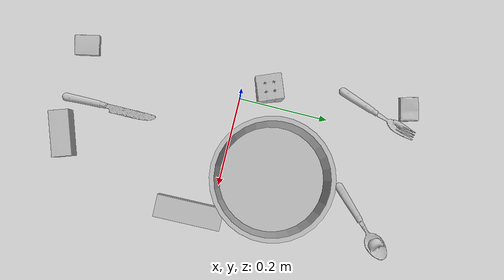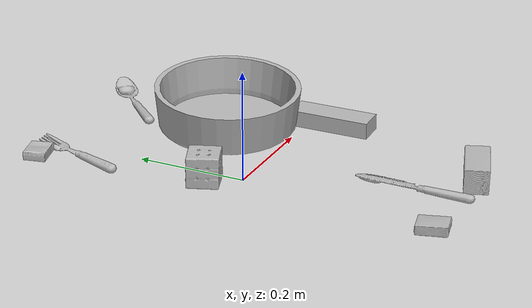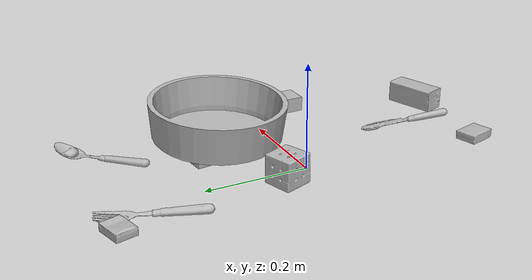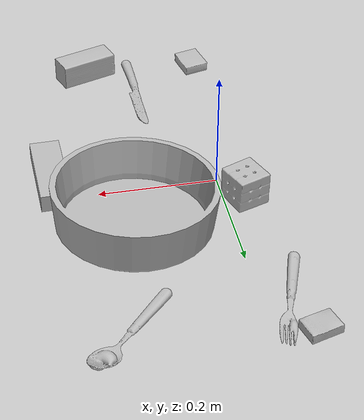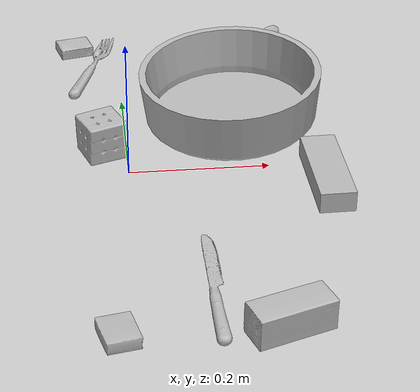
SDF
<sdf version="1.4">
  <world name="default">
    <light name="light1" type="point">
      <pose>0 0 1 0 0 0</pose>
      <diffuse>3 3 3 1</diffuse>
      <specular>3 3 3 1</specular>
    </light>
    <light name="light2" type="point">
      <pose>0 0.5 2 0 0 0</pose>
      <diffuse>1 1 1 1</diffuse>
      <specular>1 1 1 1</specular>
    </light>
    <light name="light3" type="point">
      <pose>0 0.5 2 0 0 0</pose>
      <diffuse>3 3 3 1</diffuse>
      <specular>3 3 3 1</specular>
    </light>
    <scene>
      <ambient>0.7 0.7 0.7</ambient>
    </scene>
    <model name="box11">
      <link name="link_box11">
        <collision name="default">
          <geometry>
            <mesh>
              <uri>model://cracker_box/collision_meshes/collision.obj</uri>
              <scale>0.25 0.25 0.25</scale>
            </mesh>
          </geometry>
          <surface>
            <friction>
              <ode>
                <mu>0.5</mu>
                <mu2>0.5</mu2>
              </ode>
            </friction>
          <contact>
        <ode>
            <max_vel>0</max_vel>
            <min_depth>0.0001</min_depth>
            <kp>1e8</kp>
        </ode>
    </contact></surface>
        </collision>
        <visual name="default">
          <geometry>
            <mesh>
              <uri>model://cracker_box/visual_meshes/visual.dae</uri>
              <scale>0.25 0.25 0.25</scale>
            </mesh>
          </geometry>
        </visual>
        <inertial>
          <mass>0.04448898881673813</mass>
          <pose>0.00023660270380787551 6.358561950037256e-05 -0.000425738311605528 -0.00031620780372907927 -0.011106488668730609 0.002546795468482302</pose>
          <inertia>
            <ixx>7.0725087e-06</ixx>
            <iyy>1.1678099e-05</iyy>
            <izz>1.666572e-05</izz>
            <ixy>0</ixy>
            <ixz>0</ixz>
            <iyz>0</iyz>
          </inertia>
        </inertial>
      </link>
      <pose>-0.06831073015928268 0.37137094140052795 0.009096038527786732 -0.014050460387982843 -0.0050142198044985375 -2.882812270447369</pose>
    </model>
    <model name="box12">
      <link name="link_box12">
        <collision name="default">
          <geometry>
            <mesh>
              <uri>model://wood_block/collision_meshes/collision.obj</uri>
              <scale>0.5 0.5 0.5</scale>
            </mesh>
          </geometry>
          <surface>
            <friction>
              <ode>
                <mu>0.5</mu>
                <mu2>0.5</mu2>
              </ode>
            </friction>
          <contact>
        <ode>
            <max_vel>0</max_vel>
            <min_depth>0.0001</min_depth>
            <kp>1e8</kp>
        </ode>
    </contact></surface>
        </collision>
        <visual name="default">
          <geometry>
            <mesh>
              <uri>model://wood_block/visual_meshes/visual.dae</uri>
              <scale>0.5 0.5 0.5</scale>
            </mesh>
          </geometry>
        </visual>
        <inertial>
          <mass>0.30308207869529724</mass>
          <pose>-2.906657982748584e-06 -0.000285404734313488 0.00013204291462898254 -0.05220975528484064 -0.0051926956083073895 -0.006861380255216688</pose>
          <inertia>
            <ixx>0.00010139242</ixx>
            <iyy>0.00032029866</iyy>
            <izz>0.0003191006</izz>
            <ixy>0</ixy>
            <ixz>0</ixz>
            <iyz>0</iyz>
          </inertia>
        </inertial>
      </link>
      <pose>0.17159470915794373 -0.36243271827697754 0.02262926660478115 -0.005208390104960029 0.0057187520811436765 -2.8091174088226905</pose>
    </model>
    <model name="box13">
      <link name="link_box13">
        <collision name="default">
          <geometry>
            <mesh>
              <uri>model://pudding_box/collision_meshes/collision.obj</uri>
              <scale>0.5 0.5 0.5</scale>
            </mesh>
          </geometry>
          <surface>
            <friction>
              <ode>
                <mu>0.5</mu>
                <mu2>0.5</mu2>
              </ode>
            </friction>
          <contact>
        <ode>
            <max_vel>0</max_vel>
            <min_depth>0.0001</min_depth>
            <kp>1e8</kp>
        </ode>
    </contact></surface>
        </collision>
        <visual name="default">
          <geometry>
            <mesh>
              <uri>model://pudding_box/visual_meshes/visual.dae</uri>
              <scale>0.5 0.5 0.5</scale>
            </mesh>
          </geometry>
        </visual>
        <inertial>
          <mass>0.06630203872919083</mass>
          <pose>0.00024474109522998333 0.00040339428232982755 -0.00025944141088984907 0.0052131027026664865 -0.006603797821229493 0.02007983447369903</pose>
          <inertia>
            <ixx>1.873776e-05</ixx>
            <iyy>1.2606899e-05</iyy>
            <izz>2.7671198e-05</izz>
            <ixy>0</ixy>
            <ixz>0</ixz>
            <iyz>0</iyz>
          </inertia>
        </inertial>
      </link>
      <pose>-0.0319686084985733 -0.35927873849868774 0.009862903505563736 0.022348610724161704 -0.011391691291276934 -2.9211605834970142</pose>
    </model>
    <model name="box21">
      <link name="link_box21">
        <collision name="default">
          <geometry>
            <mesh>
              <uri>model://sugar_box/collision_meshes/collision.obj</uri>
              <scale>0.5 0.5 0.5</scale>
            </mesh>
          </geometry>
          <surface>
            <friction>
              <ode>
                <mu>0.5</mu>
                <mu2>0.5</mu2>
              </ode>
            </friction>
          <contact>
        <ode>
            <max_vel>0</max_vel>
            <min_depth>0.0001</min_depth>
            <kp>1e8</kp>
        </ode>
    </contact></surface>
        </collision>
        <visual name="default">
          <geometry>
            <mesh>
              <uri>model://sugar_box/visual_meshes/visual.dae</uri>
              <scale>0.5 0.5 0.5</scale>
            </mesh>
          </geometry>
        </visual>
        <inertial>
          <mass>0.09398066252470016</mass>
          <pose>0.0005171863595023751 1.924554817378521e-05 -0.00018182402709499002 -0.00040462650409139634 0.0010506636387973133 0.002615378555960767</pose>
          <inertia>
            <ixx>1.9576108e-05</ixx>
            <iyy>6.3274e-05</iyy>
            <izz>7.574653e-05</izz>
            <ixy>0</ixy>
            <ixz>0</ixz>
            <iyz>0</iyz>
          </inertia>
        </inertial>
      </link>
      <pose>0.12902326881885529 0.1633201390504837 0.011480910703539848 0.019911599312881046 -0.022808986133856488 0.14890099865226109</pose>
    </model>
    <model name="box22">
      <link name="link_box22">
        <collision name="default">
          <geometry>
            <mesh>
              <uri>model://jenga/collision_meshes/collision.obj</uri>
              <scale>1.0 1.0 1.0</scale>
            </mesh>
          </geometry>
          <surface>
            <friction>
              <ode>
                <mu>0.5</mu>
                <mu2>0.5</mu2>
              </ode>
            </friction>
          <contact>
        <ode>
            <max_vel>0</max_vel>
            <min_depth>0.0001</min_depth>
            <kp>1e8</kp>
        </ode>
    </contact></surface>
        </collision>
        <visual name="default">
          <geometry>
            <mesh>
              <uri>model://jenga/visual_meshes/visual.dae</uri>
              <scale>1.0 1.0 1.0</scale>
            </mesh>
          </geometry>
        </visual>
        <inertial>
          <mass>0.2620435655117035</mass>
          <pose>-2.5028555228345795e-07 -0.0001025000965455547 -4.092339804628864e-05 0.0 -7.342154049184251e-07 0.0</pose>
          <inertia>
            <ixx>7.251381e-05</ixx>
            <iyy>0.0004913516</iyy>
            <izz>0.00052455964</izz>
            <ixy>0</ixy>
            <ixz>0</ixz>
            <iyz>0</iyz>
          </inertia>
        </inertial>
      </link>
      <pose>0.2733553349971771 -0.04946187883615494 0.01499988790601492 -2.121404146913309e-05 1.808599665233557e-05 -1.5500342515869754</pose>
    </model>
    <model name="box23">
      <link name="link_box23">
        <collision name="default">
          <geometry>
            <mesh>
              <uri>model://rubiks_cube/collision_meshes/collision.obj</uri>
              <scale>1.0 1.0 1.0</scale>
            </mesh>
          </geometry>
          <surface>
            <friction>
              <ode>
                <mu>0.5</mu>
                <mu2>0.5</mu2>
              </ode>
            </friction>
          <contact>
        <ode>
            <max_vel>0</max_vel>
            <min_depth>0.0001</min_depth>
            <kp>1e8</kp>
        </ode>
    </contact></surface>
        </collision>
        <visual name="default">
          <geometry>
            <mesh>
              <uri>model://rubiks_cube/visual_meshes/visual.dae</uri>
              <scale>1.0 1.0 1.0</scale>
            </mesh>
          </geometry>
        </visual>
        <inertial>
          <mass>0.1897622048854828</mass>
          <pose>2.6721043468569405e-05 5.256967051536776e-05 -7.264316082000732e-06 -0.054673156626660294 -0.09814014504853939 -0.034453657529750985</pose>
          <inertia>
            <ixx>0.00010485636</ixx>
            <iyy>0.00010436737</iyy>
            <izz>0.000105725274</izz>
            <ixy>0</ixy>
            <ixz>0</ixz>
            <iyz>0</iyz>
          </inertia>
        </inertial>
      </link>
      <pose>-0.03477120399475098 0.056736256927251816 0.028678953647613525 -4.2782574394579395e-06 -1.184939257591765e-06 -1.1971256186466932</pose>
    </model>
    <model name="plate1">
      <link name="link_plate1">
        <collision name="default">
          <geometry>
            <mesh>
              <uri>model://pan_tefal/collision_meshes/collision.obj</uri>
              <scale>1.0 1.0 1.0</scale>
            </mesh>
          </geometry>
          <surface>
            <friction>
              <ode>
                <mu>0.5</mu>
                <mu2>0.5</mu2>
              </ode>
            </friction>
          <contact>
        <ode>
            <max_vel>0</max_vel>
            <min_depth>0.0001</min_depth>
            <kp>1e8</kp>
        </ode>
    </contact></surface>
        </collision>
        <visual name="default">
          <geometry>
            <mesh>
              <uri>model://pan_tefal/visual_meshes/visual.dae</uri>
              <scale>1.0 1.0 1.0</scale>
            </mesh>
          </geometry>
        </visual>
        <inertial>
          <mass>0.8768928050994873</mass>
          <pose>-0.00018002584693022072 3.279091833974235e-05 -0.008514934219419956 0.0008190272128915226 -0.0003301349770144462 -0.3318573305948388</pose>
          <inertia>
            <ixx>0.0060531492</ixx>
            <iyy>0.006092174</iyy>
            <izz>0.011142679</izz>
            <ixy>0</ixy>
            <ixz>0</ixz>
            <iyz>0</iyz>
          </inertia>
        </inertial>
      </link>
      <pose>0.15623164176940918 0.10824311524629593 0.059941526502370834 -0.0008282570186636683 -0.05740234786875026 0.7386556272575759</pose>
    </model>
    <model name="silverware1">
      <link name="link_silverware1">
        <collision name="default">
          <geometry>
            <mesh>
              <uri>model://spoon/collision_meshes/collision.obj</uri>
              <scale>1.0 1.0 1.0</scale>
            </mesh>
          </geometry>
          <surface>
            <friction>
              <ode>
                <mu>0.5</mu>
                <mu2>0.5</mu2>
              </ode>
            </friction>
          <contact>
        <ode>
            <max_vel>0</max_vel>
            <min_depth>0.0001</min_depth>
            <kp>1e8</kp>
        </ode>
    </contact></surface>
        </collision>
        <visual name="default">
          <geometry>
            <mesh>
              <uri>model://spoon/visual_meshes/visual.dae</uri>
              <scale>1.0 1.0 1.0</scale>
            </mesh>
          </geometry>
        </visual>
        <inertial>
          <mass>0.030811671167612076</mass>
          <pose>-0.005526314955204725 -0.0016034170985221863 -0.0007271655485965312 0.03521832474385929 -0.03906585488360169 0.0061506134218646934</pose>
          <inertia>
            <ixx>1.713795e-06</ixx>
            <iyy>0.000117237374</iyy>
            <izz>0.00011808256</izz>
            <ixy>0</ixy>
            <ixz>0</ixz>
            <iyz>0</iyz>
          </inertia>
        </inertial>
      </link>
      <pose>0.19907936453819275 0.3280138075351715 0.008385262452065945 0.006731721583684871 0.026893001025392656 0.7933765990446532</pose>
    </model>
    <model name="silverware2">
      <link name="link_silverware2">
        <collision name="default">
          <geometry>
            <mesh>
              <uri>model://fork/collision_meshes/collision.obj</uri>
              <scale>1.0 1.0 1.0</scale>
            </mesh>
          </geometry>
          <surface>
            <friction>
              <ode>
                <mu>0.5</mu>
                <mu2>0.5</mu2>
              </ode>
            </friction>
          <contact>
        <ode>
            <max_vel>0</max_vel>
            <min_depth>0.0001</min_depth>
            <kp>1e8</kp>
        </ode>
    </contact></surface>
        </collision>
        <visual name="default">
          <geometry>
            <mesh>
              <uri>model://fork/visual_meshes/visual.dae</uri>
              <scale>1.0 1.0 1.0</scale>
            </mesh>
          </geometry>
        </visual>
        <inertial>
          <mass>0.016358599066734314</mass>
          <pose>-0.029570044949650764 0.00046588238910771906 0.0003218862693756819 -0.013550710307666105 -0.010977838412833367 0.014453905587424366</pose>
          <inertia>
            <ixx>5.7346136e-07</ixx>
            <iyy>4.270759e-05</iyy>
            <izz>4.29641e-05</izz>
            <ixy>0</ixy>
            <ixz>0</ixz>
            <iyz>0</iyz>
          </inertia>
        </inertial>
      </link>
      <pose>-0.041943371295928955 0.3045636713504791 0.005688480567187071 -0.18982044292755085 0.024819264299703558 1.2377120184320916</pose>
    </model>
    <model name="silverware3">
      <link name="link_silverware3">
        <collision name="default">
          <geometry>
            <mesh>
              <uri>model://knife/collision_meshes/collision.obj</uri>
              <scale>1.0 1.0 1.0</scale>
            </mesh>
          </geometry>
          <surface>
            <friction>
              <ode>
                <mu>0.5</mu>
                <mu2>0.5</mu2>
              </ode>
            </friction>
          <contact>
        <ode>
            <max_vel>0</max_vel>
            <min_depth>0.0001</min_depth>
            <kp>1e8</kp>
        </ode>
    </contact></surface>
        </collision>
        <visual name="default">
          <geometry>
            <mesh>
              <uri>model://knife/visual_meshes/visual.dae</uri>
              <scale>1.0 1.0 1.0</scale>
            </mesh>
          </geometry>
        </visual>
        <inertial>
          <mass>0.02715744450688362</mass>
          <pose>-0.023785259574651718 0.0015275124460458755 5.062024501967244e-05 0.07304743927496513 0.01724841757037888 -0.007409820832494391</pose>
          <inertia>
            <ixx>7.708383e-07</ixx>
            <iyy>0.00010433449</iyy>
            <izz>0.00010458276</izz>
            <ixy>0</ixy>
            <ixz>0</ixz>
            <iyz>0</iyz>
          </inertia>
        </inertial>
      </link>
      <pose>0.09159065037965775 -0.28018075227737427 0.007946519181132317 -0.023929053822767003 -0.014542501809120222 1.5735638690466922</pose>
    </model>
  <physics type="ode">
      <max_contacts>50</max_contacts>
      <ode>
        <solver>
          <type>quick</type>
          <iters>75</iters>
        </solver>
        <constraints>
          <contact_max_correcting_vel>0</contact_max_correcting_vel>
          <contact_surface_layer>0</contact_surface_layer>
        </constraints>
      </ode>
    </physics></world>
</sdf>
